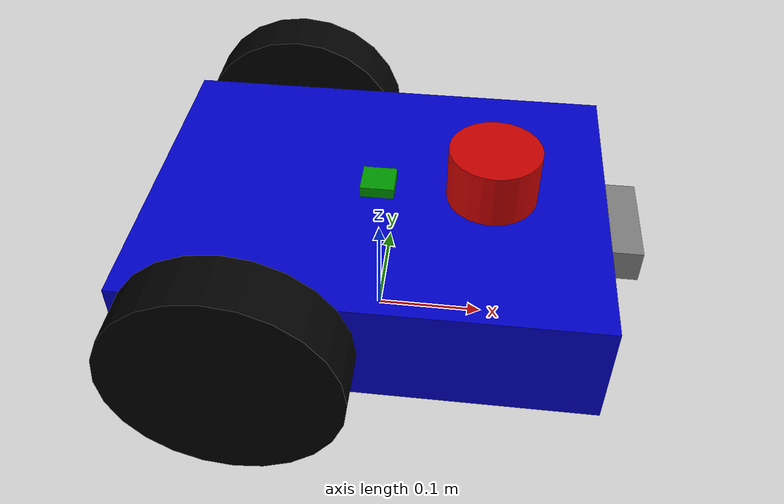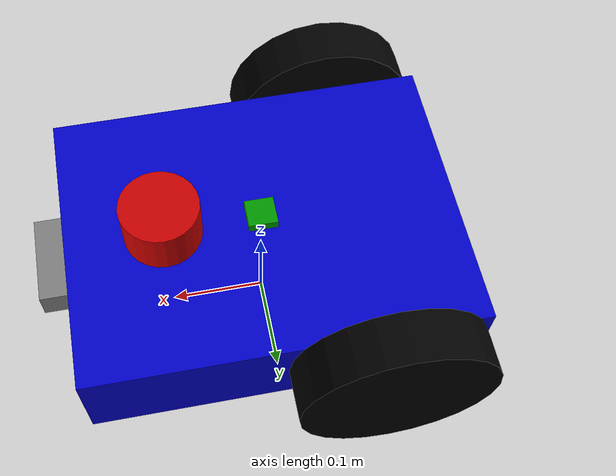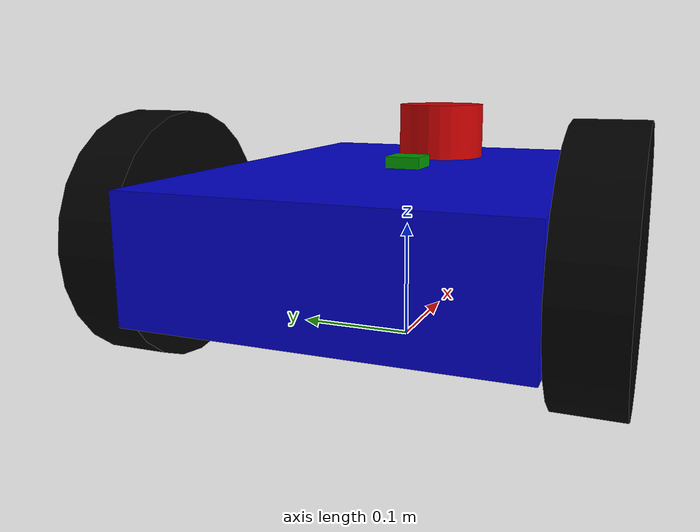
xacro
<?xml version="1.0"?>
<robot xmlns:xacro="http://www.ros.org/wiki/xacro" name="mi_robot">

  <material name="blue"><color rgba="0 0 0.8 1"/></material>
  <material name="black"><color rgba="0 0 0 1"/></material>
  <material name="white"><color rgba="1 1 1 1"/></material>

  <xacro:macro name="box_inertia" params="m w h d">
    <inertial>
      <mass value="${m}"/>
      <inertia ixx="${(m/12) * (h*h + d*d)}" ixy="0" ixz="0"
               iyy="${(m/12) * (w*w + d*d)}" iyz="0"
               izz="${(m/12) * (w*w + h*h)}"/>
    </inertial>
  </xacro:macro>

  <xacro:macro name="cylinder_inertia" params="m r h">
    <inertial>
      <origin xyz="0 0 0" rpy="1.5708 0 0"/>
      <mass value="${m}"/>
      <inertia ixx="${(m/12) * (3*r*r + h*h)}" ixy="0" ixz="0"
               iyy="${(m/12) * (3*r*r + h*h)}" iyz="0"
               izz="${(m/2) * (r*r)}"/>
    </inertial>
  </xacro:macro>

  <xacro:macro name="sphere_inertia" params="m r">
    <inertial>
      <mass value="${m}"/>
      <inertia ixx="${(2/5) * m * (r*r)}" ixy="0" ixz="0"
               iyy="${(2/5) * m * (r*r)}" iyz="0"
               izz="${(2/5) * m * (r*r)}"/>
    </inertial>
  </xacro:macro>

  <link name="base_footprint"/>

  <joint name="base_joint" type="fixed">
    <parent link="base_footprint"/>
    <child link="base_link"/>
    <origin xyz="0 0 0.1" rpy="0 0 0"/>
  </joint>

  <link name="base_link">
    <visual>
      <geometry><box size="0.4 0.3 0.1"/></geometry>
      <material name="blue"/>
    </visual>
    <collision>
      <geometry><box size="0.4 0.3 0.1"/></geometry>
    </collision>
    <xacro:box_inertia m="5.0" w="0.4" h="0.3" d="0.1"/>
  </link>

  <xacro:macro name="wheel" params="prefix y_reflect">
    <link name="${prefix}_wheel">
      <visual>
        <origin xyz="0 0 0" rpy="1.5708 0 0"/>
        <geometry><cylinder radius="0.1" length="0.05"/></geometry>
        <material name="black"/>
      </visual>
      <collision>
        <origin xyz="0 0 0" rpy="1.5708 0 0"/>
        <geometry><cylinder radius="0.1" length="0.05"/></geometry>
      </collision>
      <xacro:cylinder_inertia m="0.5" r="0.1" h="0.05"/>
    </link>
    <joint name="${prefix}_wheel_joint" type="continuous">
      <parent link="base_link"/>
      <child link="${prefix}_wheel"/>
      <origin xyz="-0.1 ${y_reflect * 0.175} 0" rpy="0 0 0"/>
      <axis xyz="0 1 0"/>
    </joint>
  </xacro:macro>

  <xacro:wheel prefix="left" y_reflect="1"/>
  <xacro:wheel prefix="right" y_reflect="-1"/>

  <link name="caster_wheel">
    <visual>
      <geometry><sphere radius="0.05"/></geometry>
      <material name="white"/>
    </visual>
    <collision>
      <geometry><sphere radius="0.05"/></geometry>
    </collision>
    <xacro:sphere_inertia m="0.2" r="0.05"/>
  </link>

  <joint name="caster_joint" type="fixed">
    <parent link="base_link"/>
    <child link="caster_wheel"/>
    <origin xyz="0.15 0 -0.05" rpy="0 0 0"/>
  </joint>

  <xacro:include filename="sensors.xacro"/>

</robot>

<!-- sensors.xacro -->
<robot xmlns:xacro="http://www.ros.org/wiki/xacro">

  <material name="green"><color rgba="0 0.6 0 1"/></material>
  <material name="red"><color rgba="0.8 0 0 1"/></material>
  <material name="gray"><color rgba="0.5 0.5 0.5 1"/></material>

  <!-- Cilindro con el eje en Z (el lidar va de pie) -->
  <xacro:macro name="cylinder_z_inertia" params="m r h">
    <inertial>
      <mass value="${m}"/>
      <inertia ixx="${(m/12) * (3*r*r + h*h)}" ixy="0" ixz="0"
               iyy="${(m/12) * (3*r*r + h*h)}" iyz="0"
               izz="${(m/2) * (r*r)}"/>
    </inertial>
  </xacro:macro>

  <!-- IMU -->
  <link name="imu_link">
    <visual>
      <geometry><box size="0.03 0.03 0.01"/></geometry>
      <material name="green"/>
    </visual>
    <collision>
      <geometry><box size="0.03 0.03 0.01"/></geometry>
    </collision>
    <xacro:box_inertia m="0.02" w="0.03" h="0.03" d="0.01"/>
  </link>

  <joint name="imu_joint" type="fixed">
    <parent link="base_link"/>
    <child link="imu_link"/>
    <origin xyz="0 0 0.055" rpy="0 0 0"/>
  </joint>

  <!-- Lidar -->
  <link name="lidar_link">
    <visual>
      <geometry><cylinder radius="0.04" length="0.05"/></geometry>
      <material name="red"/>
    </visual>
    <collision>
      <geometry><cylinder radius="0.04" length="0.05"/></geometry>
    </collision>
    <xacro:cylinder_z_inertia m="0.2" r="0.04" h="0.05"/>
  </link>

  <joint name="lidar_joint" type="fixed">
    <parent link="base_link"/>
    <child link="lidar_link"/>
    <origin xyz="0.1 0 0.075" rpy="0 0 0"/>
  </joint>

  <!-- Camara -->
  <link name="camera_link">
    <visual>
      <geometry><box size="0.03 0.09 0.03"/></geometry>
      <material name="gray"/>
    </visual>
    <collision>
      <geometry><box size="0.03 0.09 0.03"/></geometry>
    </collision>
    <xacro:box_inertia m="0.1" w="0.03" h="0.09" d="0.03"/>
  </link>

  <joint name="camera_joint" type="fixed">
    <parent link="base_link"/>
    <child link="camera_link"/>
    <origin xyz="0.215 0 0.02" rpy="0 0 0"/>
  </joint>

</robot>
